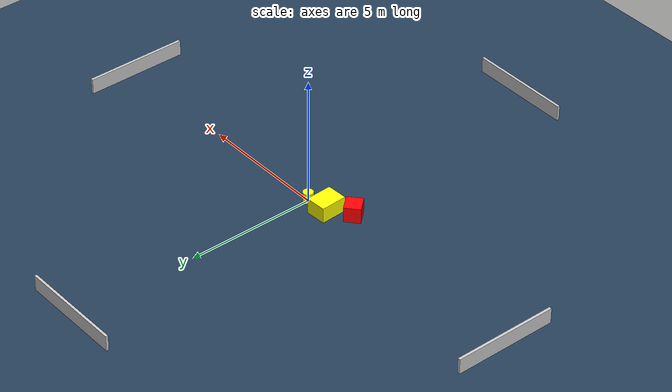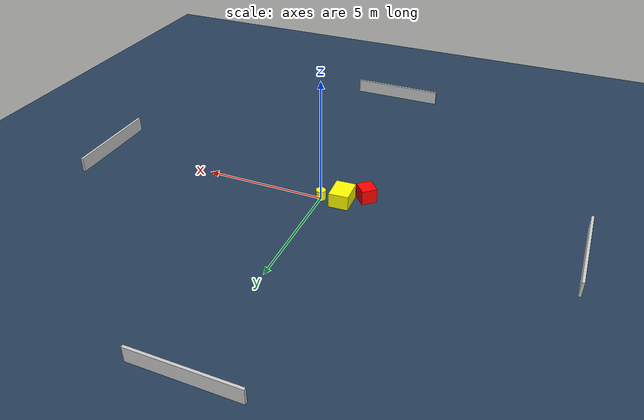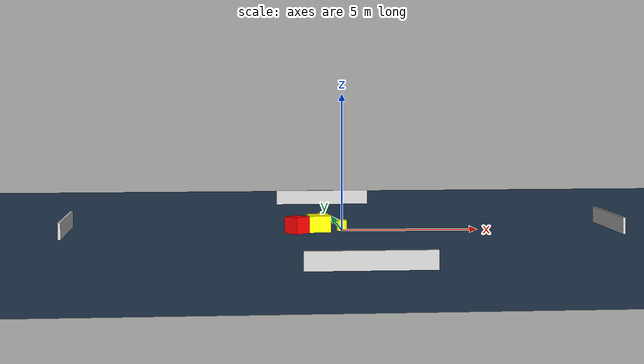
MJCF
<?xml version="1.0" ?>
<mujoco model="generated_environment">
  <option timestep="0.01" integrator="RK4" cone="elliptic"/>
  <default>
    <geom density="1"/>
  </default>
  <asset>
    <texture builtin="gradient" height="3072" name="skybox" rgb1="0.3 0.5 0.7" rgb2="0 0 0" type="skybox" width="512"/>
    <texture builtin="checker" height="300" name="groundplane" rgb1="0.2 0.3 0.4" rgb2="0.1 0.2 0.3" type="2d" width="300"/>
    <material name="groundplane" reflectance="0.2" texrepeat="5 5" texture="groundplane"/>
  </asset>
  <worldbody>
    <light dir="0 0 -1" directional="true" pos="0 0 1.5"/>
    <geom condim="3" friction="0.5 0.005 0.001" material="groundplane" name="floor" pos="0 0 0" size="0 0 0.05" type="plane"/>
    <body name="walls">
      <geom name="wall_1" condim="4" pos="-10.0 0.0 0.3" rgba="0.800000011920929 0.800000011920929 0.800000011920929 1.0" size="0.05 2.0 0.3" type="box"/>
      <geom name="wall_2" condim="4" pos="10.0 0.0 0.3" rgba="0.800000011920929 0.800000011920929 0.800000011920929 1.0" size="0.05 2.0 0.3" type="box"/>
      <geom name="wall_3" condim="4" pos="0.0 -10.0 0.3" rgba="0.800000011920929 0.800000011920929 0.800000011920929 1.0" size="2.0 0.05 0.3" type="box"/>
      <geom name="wall_4" condim="4" pos="0.0 10.0 0.3" rgba="0.800000011920929 0.800000011920929 0.800000011920929 1.0" size="2.0 0.05 0.3" type="box"/>
    </body>
    <body name="robot">
      <joint name="joint_x" type="slide" pos="0 0 0" axis="1 0 0"/>
      <joint name="joint_y" type="slide" pos="0 0 0" axis="0 1 0"/>
      <geom name="robot" type="cylinder" pos="0.0 0.0 0.2" size="0.2 0.2 0.0" mass="5.0" friction="1.0 0.005 0.0001" condim="4" rgba="1.0 1.0 0.0 1.0"/>
    </body>
    <body name="obstacle_1_movable">
      <geom name="obstacle_1_movable" condim="4" pos="-0.8622727224913245 -0.09582879077455969 0.3" euler="0 0 92.83439177690282" friction="0.0 0.005 0.001" rgba="1.0 1.0 0.0 1.0" size="0.5061902042967684 0.3975753690074252 0.3" type="box" mass="0.1"/>
      <joint type="free"/>
    </body>
    <body name="obstacle_2_static">
      <geom name="obstacle_2_static" condim="4" pos="-1.6795965131723034 -0.6327161276712487 0.3" euler="0 0 310.79940781067415" friction="0.0 0.005 0.001" rgba="1.0 0.0 0.0 1.0" size="0.33035853154790373 0.31058092713863683 0.3" type="box"/>
    </body>
  </worldbody>
  <actuator>
    <motor name="actuator_x" joint="joint_x" gear="1" ctrlrange="-1 1"/>
    <motor name="actuator_y" joint="joint_y" gear="1" ctrlrange="-1 1"/>
  </actuator>
</mujoco>
